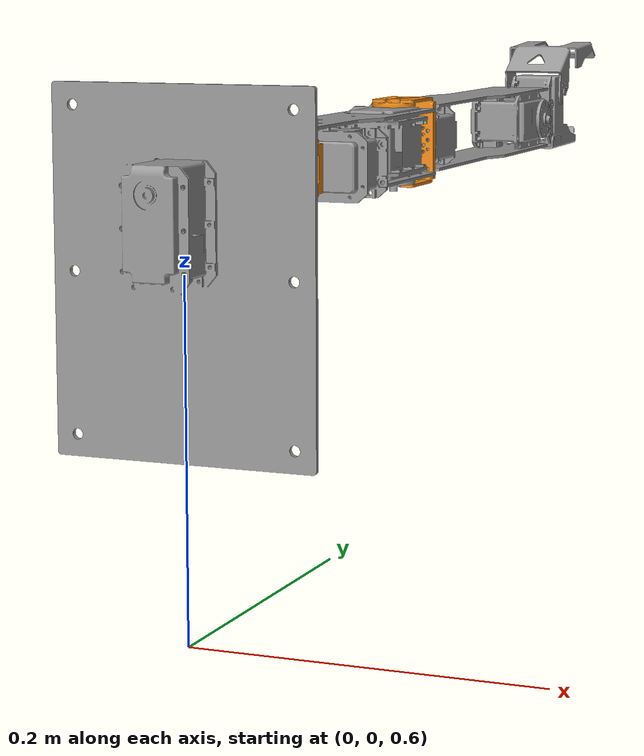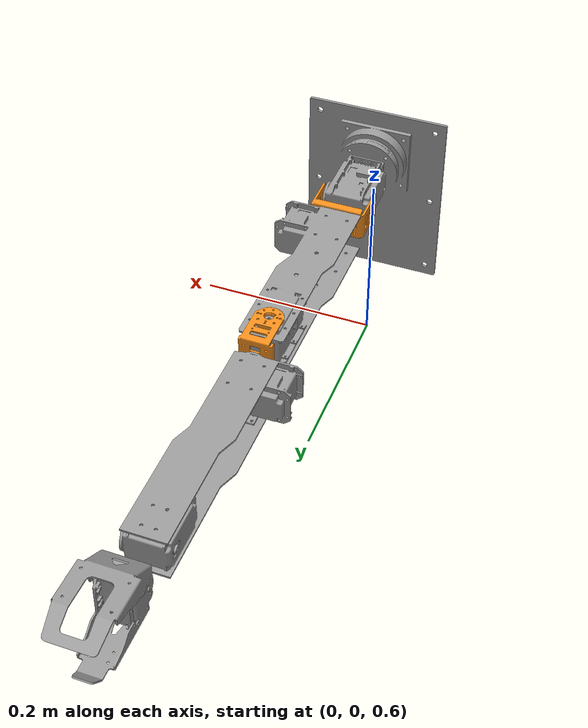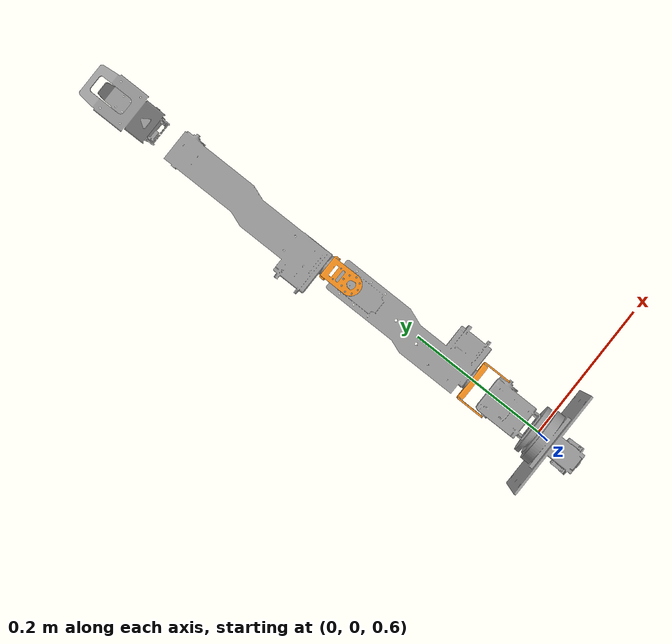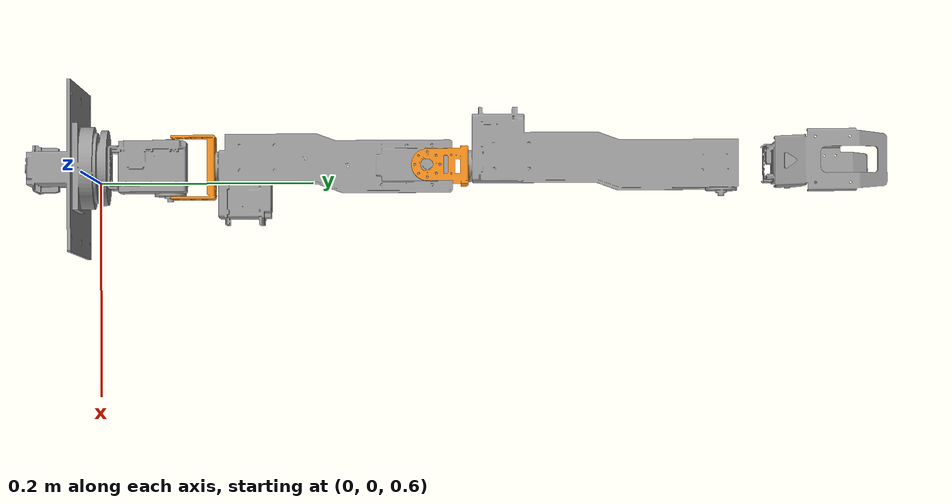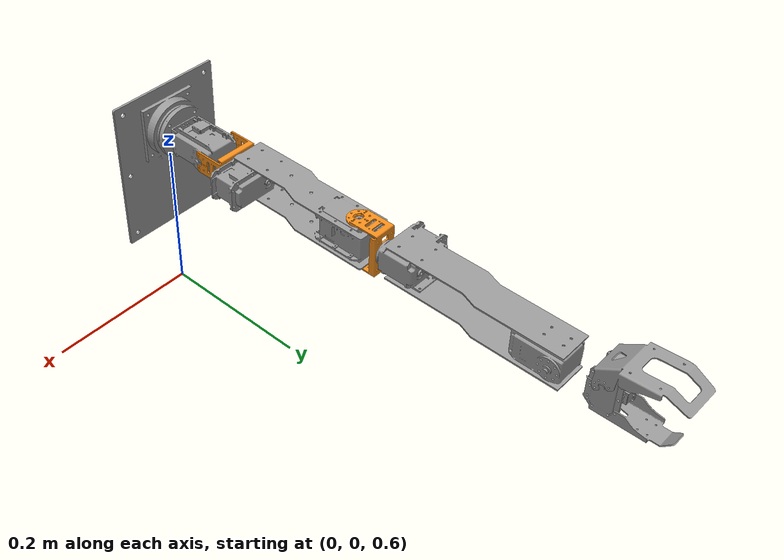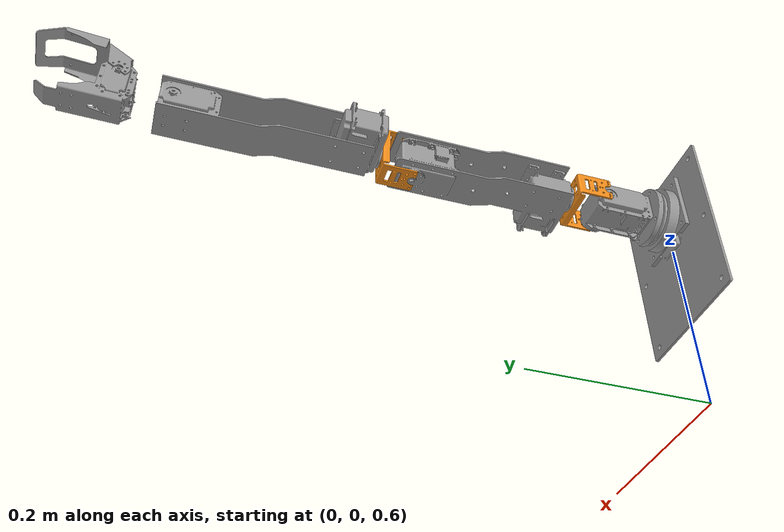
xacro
<?xml version="1.0"?>
<!-- ROMO_Manipulator Chain -->
<robot name="open_manipulator_chain" xmlns:xacro="http://www.ros.org/wiki/xacro">

   <!-- some parameters -->
  <xacro:property name="pi" value="3.141592654" />

  <!-- Import all Gazebo-customization elements, including Gazebo colors -->
  <!-- Import Rviz colors -->
  <xacro:include filename="$(find open_manipulator_description)/urdf/materials.xacro" />

  <!-- World -->
  <link name="left_base">
  </link>

  <!-- World fixed joint-->
  <joint name="left_fixed" type="fixed">
    <origin xyz="0 0 0.8" rpy="${pi*0.5} 0 0"/>
    <parent link="left_base"/>
    <child link="link1"/>
  </joint>

  <!-- Link 1 -->
  <link name="link1">
    <collision>
      <origin xyz="0.0 0.0 0.0" rpy="0 0 0"/>
      <geometry>
        <mesh filename="package://romo_ros/meshes/left_chain_link1.stl" />
      </geometry>
    </collision>

    <visual>
      <origin xyz="0.0 0.0 0.0" rpy="0 0 0"/>
      <geometry>
        <mesh filename="package://romo_ros/meshes/left_chain_link1.stl" />
      </geometry>
      <material name="grey"/>
    </visual>

    <inertial>
      <origin xyz="0 0 0.0" />
      <mass value="1" />
      <inertia ixx="0.001" ixy="0.0" ixz="0.0"
               iyy="0.001" iyz="0.0"
               izz="0.001" />
    </inertial>
  </link>

  <!-- Joint 1 -->
  <joint name="joint1" type="revolute">
    <parent link="link1"/>
    <child link="link2"/>
    <origin xyz="0.0 0.048 -0.026" rpy="0 0 0"/>
    <axis xyz="0 0 1"/>
    <limit velocity="${pi*0.5}" effort="30" lower="${-pi*0.99}" upper="${pi*0.99}" />
  </joint>

  <!-- Transmission 1 -->
  <transmission name="tran1">
    <type>transmission_interface/SimpleTransmission</type>
    <joint name="joint1">
      <hardwareInterface>PositionJointInterface</hardwareInterface>
    </joint>
    <actuator name="motor1">
      <hardwareInterface>PositionJointInterface</hardwareInterface>
      <mechanicalReduction>1</mechanicalReduction>
    </actuator>
  </transmission>

  <!--  Link 2 -->
  <link name="link2">
    <collision>
      <origin xyz="0.0 -0.048 0.026" rpy="0 0 0"/>
      <geometry>
        <mesh filename="package://romo_ros/meshes/left_chain_link2.stl" />
      </geometry>
    </collision>

    <visual>
      <origin xyz="0.0 -0.048 0.026" rpy="0 0 0"/>
      <geometry>
        <mesh filename="package://romo_ros/meshes/left_chain_link2.stl" />
      </geometry>
      <material name="grey"/>
    </visual>

    <inertial>
      <origin xyz="0 -0.048 0.026" />
      <mass value="0.5" />
      <inertia ixx="0.001" ixy="0.0" ixz="0.0"
               iyy="0.001" iyz="0.0"
               izz="0.001" />
    </inertial>
  </link>

  <!--  Joint 2 -->
  <joint name="joint2" type="revolute">
    <parent link="link2"/>
    <child link="link3"/>
    <origin xyz="0.0 0.0 -0.058" rpy="${pi*0.5} 0 0"/>
    <axis xyz="-1 0 0"/>
    <limit velocity="${pi*0.5}" effort="30"  lower="${-pi*0.5}" upper="${pi*0.5}" />
  </joint>

  <!-- Transmission 2 -->
  <transmission name="tran2">
    <type>transmission_interface/SimpleTransmission</type>
    <joint name="joint2">
      <hardwareInterface>PositionJointInterface</hardwareInterface>
    </joint>
    <actuator name="motor2">
      <hardwareInterface>PositionJointInterface</hardwareInterface>
      <mechanicalReduction>1</mechanicalReduction>
    </actuator>
  </transmission>

  <!--  Link 3 -->
  <link name="link3">
    <collision>
      <origin xyz="0.0 -0.048 0.084" rpy="0 0 0"/>
      <geometry>
        <mesh filename="package://romo_ros/meshes/left_chain_link3.stl" />
      </geometry>
    </collision>

    <visual>
      <origin xyz="0.0 -0.048 0.084" rpy="0 0 0"/>
      <geometry>
        <mesh filename="package://romo_ros/meshes/left_chain_link3.stl" />
      </geometry>
      <material name="orange"/>
    </visual>

    <inertial>
      <origin xyz="0.0 -0.048 0.084" />
      <mass value="0.5" />
      <inertia ixx="0.001" ixy="0.0" ixz="0.0"
               iyy="0.001" iyz="0.0"
               izz="0.001" />
    </inertial>
  </link>

  <!--  Joint 3 -->
  <joint name="joint3" type="revolute">
    <parent link="link3"/>
    <child link="link4"/>
    <origin xyz="0.0 -0.036 0.0" rpy="0 0 0"/>
    <axis xyz="0 -1 0"/>
    <limit velocity="${pi*0.5}" effort="30" lower="${-pi*0.7}" upper="${pi*0.7}" />
  </joint>

  <!-- Transmission 3 -->
  <transmission name="tran3">
    <type>transmission_interface/SimpleTransmission</type>
    <joint name="joint3">
      <hardwareInterface>PositionJointInterface</hardwareInterface>
    </joint>
    <actuator name="motor3">
      <hardwareInterface>PositionJointInterface</hardwareInterface>
      <mechanicalReduction>1</mechanicalReduction>
    </actuator>
  </transmission>

  <!--  Link 4 -->
  <link name="link4">
    <collision>
      <origin xyz="0.0 -0.012 0.084" rpy="0 0 0"/>
      <geometry>
        <mesh filename="package://romo_ros/meshes/left_chain_link4.stl" />
      </geometry>
    </collision>

    <visual>
      <origin xyz="0.0 -0.012 0.084" rpy="0 0 0"/>
      <geometry>
        <mesh filename="package://romo_ros/meshes/left_chain_link4.stl" />
      </geometry>
      <material name="grey"/>
    </visual>

    <inertial>
      <origin xyz="0.0 -0.012 0.084" />
      <mass value="0.5" />
      <inertia ixx="0.001" ixy="0.0" ixz="0.0"
               iyy="0.001" iyz="0.0"
               izz="0.001" />
    </inertial>
  </link>

  <!--  Joint 4 -->
  <joint name="joint4" type="revolute">
    <parent link="link4"/>
    <child link="link5"/>
    <origin xyz="0.0 -0.187 0.0" rpy="0 0 0"/>
    <axis xyz="0 0 1"/>
    <limit velocity="${pi*0.5}" effort="30" lower="${-pi*0.6}" upper="${pi*0.6}" />
  </joint>

  <!-- Transmission 4 -->
  <transmission name="tran4">
    <type>transmission_interface/SimpleTransmission</type>
    <joint name="joint4">
      <hardwareInterface>PositionJointInterface</hardwareInterface>
    </joint>
    <actuator name="motor4">
      <hardwareInterface>PositionJointInterface</hardwareInterface>
      <mechanicalReduction>1</mechanicalReduction>
    </actuator>
  </transmission>

  <!--  Link 5 -->
  <link name="link5">
    <collision>
      <origin xyz="0.0 0.175 0.084" rpy="0 0 0"/>
      <geometry>
        <mesh filename="package://romo_ros/meshes/left_chain_link5.stl" />
      </geometry>
    </collision>

    <visual>
      <origin xyz="0.0 0.175 0.084" rpy="0 0 0"/>
      <geometry>
        <mesh filename="package://romo_ros/meshes/left_chain_link5.stl" />
      </geometry>
      <material name="orange"/>
    </visual>

    <inertial>
      <origin xyz="0 0.175 0.084" />
      <mass value="0.4" />
      <inertia ixx="0.001" ixy="0.0" ixz="0.0"
               iyy="0.001" iyz="0.0"
               izz="0.001" />
    </inertial>
  </link>

  <!--  Joint 5 -->
  <joint name="joint5" type="revolute">
    <parent link="link5"/>
    <child link="link6"/>
    <origin xyz="0.0 -0.03 0.0" rpy="0 0 0"/>
    <axis xyz="0 -1 0"/>
    <limit velocity="${pi*0.5}" effort="30" lower="${-pi*0.5}" upper="${pi*0.7}" />
  </joint>

  <!-- Transmission 5 -->
  <transmission name="tran5">
    <type>transmission_interface/SimpleTransmission</type>
    <joint name="joint5">
      <hardwareInterface>PositionJointInterface</hardwareInterface>
    </joint>
    <actuator name="motor5">
      <hardwareInterface>PositionJointInterface</hardwareInterface>
      <mechanicalReduction>1</mechanicalReduction>
    </actuator>
  </transmission>

  <!--  Link 6 -->
  <link name="link6">
    <collision>
      <origin xyz="0.0 0.205 0.084" rpy="0 0 0"/>
      <geometry>
        <mesh filename="package://romo_ros/meshes/left_chain_link6.stl" />
      </geometry>
    </collision>

    <visual>
      <origin xyz="0.0 0.205 0.084" rpy="0 0 0"/>
      <geometry>
        <mesh filename="package://romo_ros/meshes/left_chain_link6.stl" />
      </geometry>
      <material name="grey"/>
    </visual>

    <inertial>
      <origin xyz="0.0 0.205 0.084" />
      <mass value="0.4" />
      <inertia ixx="0.001" ixy="0.0" ixz="0.0"
               iyy="0.001" iyz="0.0"
               izz="0.001" />
    </inertial>
  </link>

  <!--  Joint 6 -->
  <joint name="joint6" type="revolute">
    <parent link="link6"/>
    <child link="link7"/>
    <origin xyz="0.0 -0.228 0.0" rpy="0 0 0"/>
    <axis xyz="-1 0 0"/>
    <limit velocity="${pi*0.5}" effort="30" lower="${-pi*0.5}" upper="${pi*0.5}" />
  </joint>

  <!-- Transmission 6 -->
  <transmission name="tran6">
    <type>transmission_interface/SimpleTransmission</type>
    <joint name="joint6">
      <hardwareInterface>PositionJointInterface</hardwareInterface>
    </joint>
    <actuator name="motor6">
      <hardwareInterface>PositionJointInterface</hardwareInterface>
      <mechanicalReduction>1</mechanicalReduction>
    </actuator>
  </transmission>

  <!--  Link 7 -->
  <link name="link7">
    <collision>
      <origin xyz="0.0 0.433 0.084" rpy="0 0 0"/>
      <geometry>
        <mesh filename="package://romo_ros/meshes/left_chain_gripper_fix.stl" />
      </geometry>
    </collision>

    <visual>
      <origin xyz="0.0 0.433 0.084" rpy="0 0 0"/>
      <geometry>
        <mesh filename="package://romo_ros/meshes/left_chain_gripper_fix.stl" />
      </geometry>
      <material name="grey"/>
    </visual>

    <inertial>
      <origin xyz="0.0 0.433 0.084" />
      <mass value="0.4" />
      <inertia ixx="0.001" ixy="0.0" ixz="0.0"
               iyy="0.001" iyz="0.0"
               izz="0.001" />
    </inertial>
  </link>

  <!--  grip_joint -->
  <joint name="grip_joint" type="revolute">
    <parent link="link7"/>
    <child link="grip_link"/>
    <origin xyz="0.0 -0.06 -0.015" rpy="${pi*0.2} 0 0"/>
    <axis xyz="-1 0 0"/>
    <limit velocity="${pi*0.5}" effort="30" lower="${-pi*0.2}" upper="${pi*0.2}" />
  </joint>

  <!--  Grip link -->
  <link name="grip_link">
    <collision>
      <origin xyz="0.0 0.493 0.099" rpy="0 0 0"/>
      <geometry>
        <mesh filename="package://romo_ros/meshes/left_chain_gripper_move.stl" />
      </geometry>
    </collision>

    <visual>
      <origin xyz="0.0 0.493 0.099" rpy="0 0 0"/>
      <geometry>
        <mesh filename="package://romo_ros/meshes/left_chain_gripper_move.stl" />
      </geometry>
      <material name="grey"/>
    </visual>

    <inertial>
      <origin xyz="0.0 0.493 0.099" />
      <mass value="0.2" />
      <inertia ixx="0.001" ixy="0.0" ixz="0.0"
               iyy="0.001" iyz="0.0"
               izz="0.001" />
    </inertial>
  </link>

  <!--  Grip joint -->

  <!-- Transmission 5 -->

  <!--  Grip link sub -->

  <!--  Grip joint sub -->

  <!-- Transmission 6 -->
</robot>
